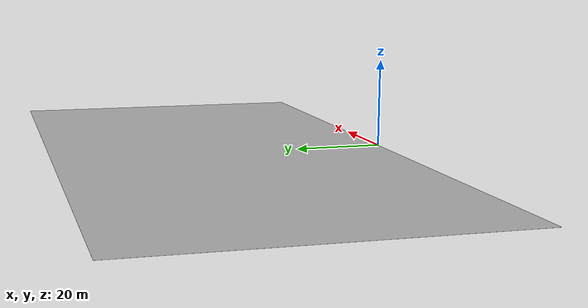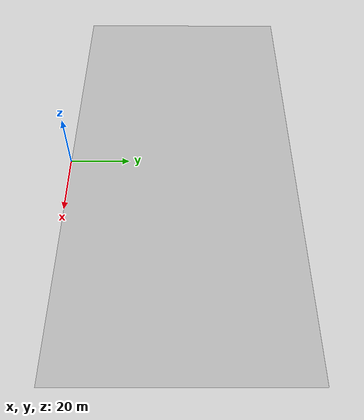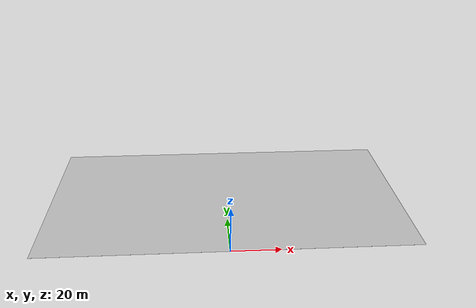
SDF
<?xml version="1.0" ?>
<sdf version="1.6">
  <model name="walkway_metal_straight">
    <static>true</static>
    <link name="link">
      <collision name="collision">
        <pose>0 0.762 0.076075 0 0 0</pose>
        <geometry>
          <box>
            <size>0.0755 0.0625 0.00001</size>
          </box>
        </geometry>
      </collision>

      <visual name="visual">
         <geometry>
           <mesh>
             <scale>0.1000 0.0500 0.0001</scale>
             <uri>model://walkway_metal_straight/meshes/mesh.obj</uri>
           </mesh>
         </geometry>
       </visual>
    </link>
  </model>
</sdf>
